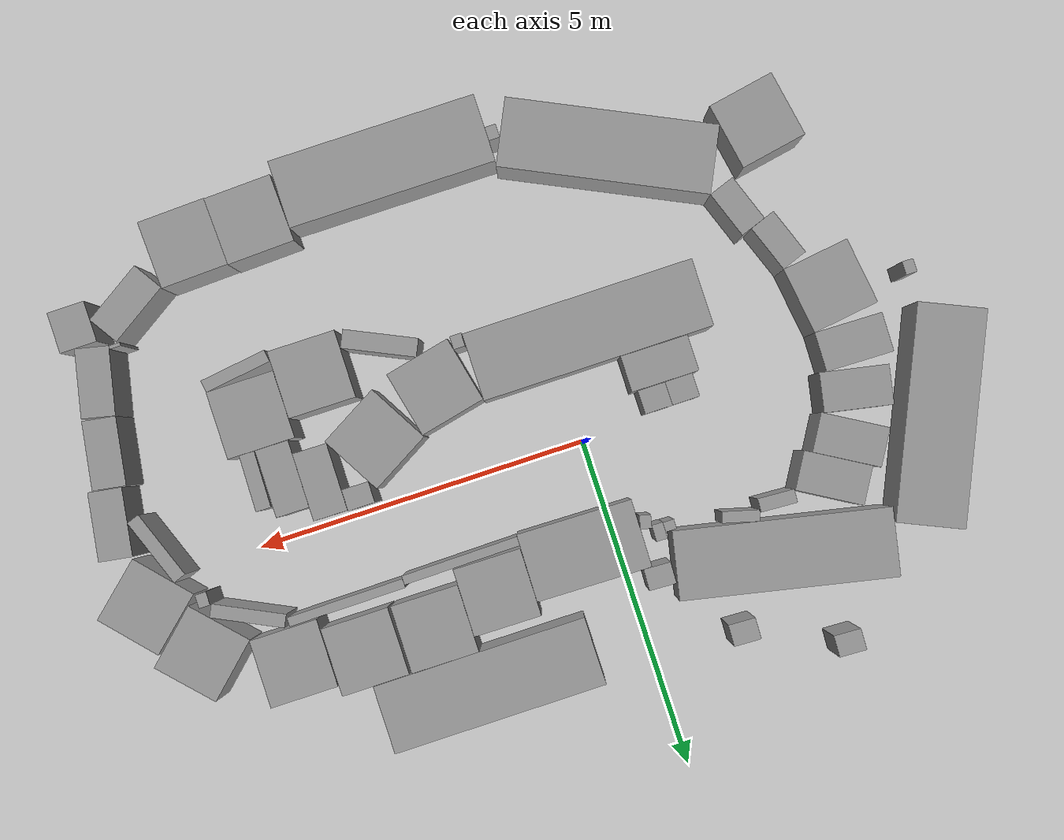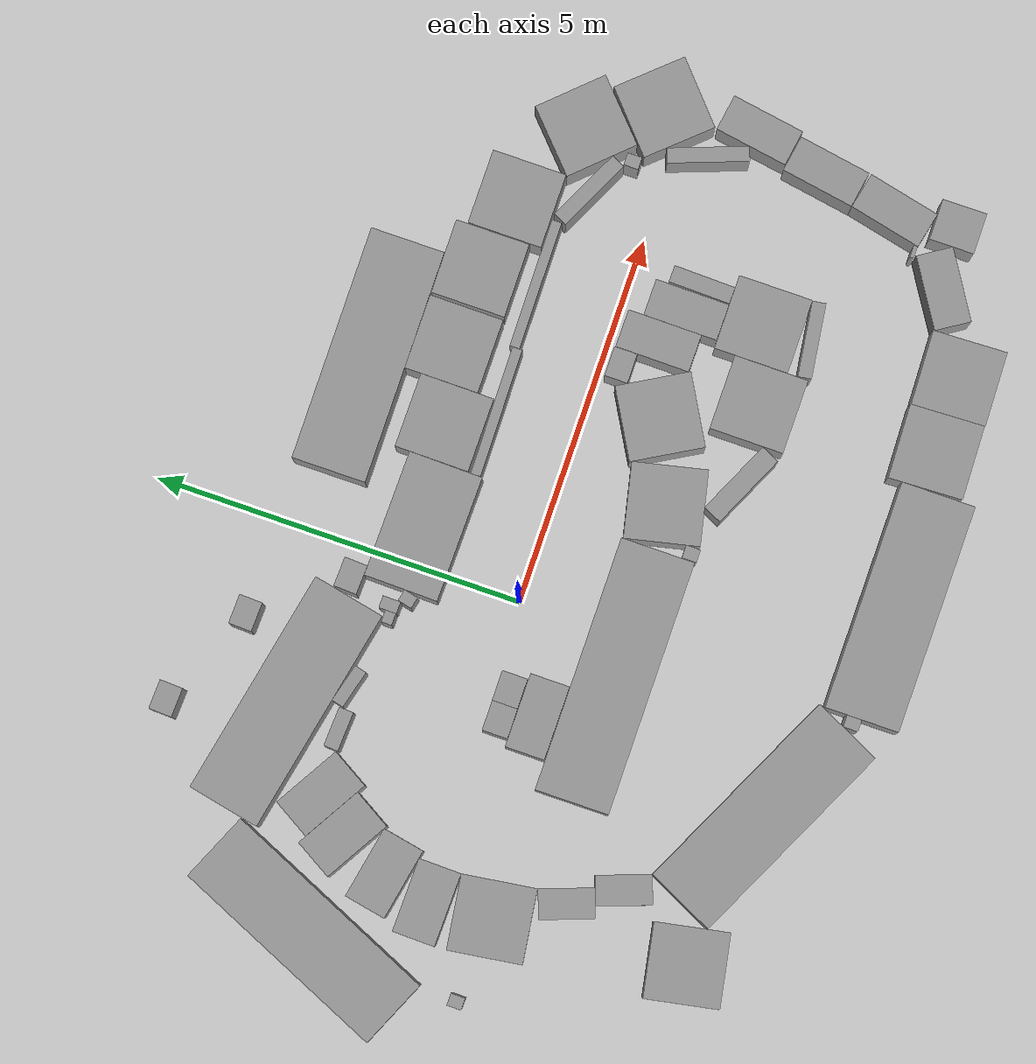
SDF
<sdf version="1.7">
 <world name="default">
  <light name="sun" type="directional">
   <pose>0 0 10 0 -0 0</pose>
   <diffuse>0.8 0.8 0.8 1</diffuse>
   <specular>0.2 0.2 0.2 1</specular>
   <attenuation>
    <range>1000</range>
    <constant>0.9</constant>
    <linear>0.01</linear>
    <quadratic>0.001</quadratic>
   </attenuation>
   <direction>-0.5 0.1 -0.9</direction>
   <spot><inner_angle>0</inner_angle><outer_angle>0</outer_angle><falloff>0</falloff></spot>
  </light>
  <model name="ground_plane">
   <static>1</static>
   <link name="link">
    <collision name="collision">
     <geometry><plane><normal>0 0 1</normal><size>100 100</size></plane></geometry>
     <surface><friction><ode><mu>100</mu><mu2>50</mu2></ode></friction></surface>
    </collision>
    <visual name="visual">
     <cast_shadows>0</cast_shadows>
     <geometry><plane><normal>0 0 1</normal><size>100 100</size></plane></geometry>
     <material>
      <script><uri>file://media/materials/scripts/gazebo.material</uri><name>Gazebo/Grey</name></script>
     </material>
    </visual>
   </link>
  </model>
  <gravity>0 0 -9.8</gravity>
  <magnetic_field>6e-06 2.3e-05 -4.2e-05</magnetic_field>
  <atmosphere type="adiabatic"/>
  <physics type="ode">
   <max_step_size>0.001</max_step_size>
   <real_time_factor>1</real_time_factor>
   <real_time_update_rate>1000</real_time_update_rate>
  </physics>
  <scene><ambient>0.4 0.4 0.4 1</ambient><background>0.7 0.7 0.7 1</background><shadows>1</shadows></scene>
  <spherical_coordinates>
   <surface_model>EARTH_WGS84</surface_model>
   <latitude_deg>0</latitude_deg>
   <longitude_deg>0</longitude_deg>
   <elevation>0</elevation>
   <heading_deg>0</heading_deg>
  </spherical_coordinates>
  <model name="unit_box">
   <pose>0.47849 1.47717 0.5 0 0 -0.019249</pose>
   <link name="link">
    <inertial>
     <mass>1</mass>
     <inertia>
      <ixx>0.166667</ixx>
      <ixy>0</ixy>
      <ixz>0</ixz>
      <iyy>0.166667</iyy>
      <iyz>0</iyz>
      <izz>0.166667</izz>
     </inertia>
    </inertial>
    <collision name="collision"><geometry><box><size>1.70352 1 1</size></box></geometry></collision>
    <visual name="visual">
     <geometry><box><size>1.70352 1 1</size></box></geometry>
     <material>
      <script><name>Gazebo/Grey</name><uri>file://media/materials/scripts/gazebo.material</uri></script>
     </material>
    </visual>
   </link>
  </model>
  <model name="unit_box_0">
   <pose>-0.550515 -1.4883 0.5 -1e-06 -0 0.000456</pose>
   <link name="link">
    <inertial>
     <mass>1</mass>
     <inertia>
      <ixx>0.166667</ixx>
      <ixy>0</ixy>
      <ixz>0</ixz>
      <iyy>0.166667</iyy>
      <iyz>0</iyz>
      <izz>0.166667</izz>
     </inertia>
    </inertial>
    <collision name="collision"><geometry><box><size>3.43585 1 1</size></box></geometry></collision>
    <visual name="visual">
     <geometry><box><size>3.43585 1 1</size></box></geometry>
     <material>
      <script><name>Gazebo/Grey</name><uri>file://media/materials/scripts/gazebo.material</uri></script>
     </material>
    </visual>
   </link>
  </model>
  <model name="unit_box_1">
   <pose>1.76719 -1.39227 0.5 0 -0 0.220031</pose>
   <link name="link">
    <inertial>
     <mass>1</mass>
     <inertia>
      <ixx>0.166667</ixx>
      <ixy>0</ixy>
      <ixz>0</ixz>
      <iyy>0.166667</iyy>
      <iyz>0</iyz>
      <izz>0.166667</izz>
     </inertia>
    </inertial>
    <collision name="collision"><geometry><box><size>1 1 1</size></box></geometry></collision>
    <visual name="visual">
     <geometry><box><size>1 1 1</size></box></geometry>
     <material>
      <script><name>Gazebo/Grey</name><uri>file://media/materials/scripts/gazebo.material</uri></script>
     </material>
    </visual>
   </link>
  </model>
  <model name="unit_box_2">
   <pose>2.81266 -0.954832 0.5 0 -0 0.518129</pose>
   <link name="link">
    <inertial>
     <mass>1</mass>
     <inertia>
      <ixx>0.166667</ixx>
      <ixy>0</ixy>
      <ixz>0</ixz>
      <iyy>0.166667</iyy>
      <iyz>0</iyz>
      <izz>0.166667</izz>
     </inertia>
    </inertial>
    <collision name="collision"><geometry><box><size>1 1 1</size></box></geometry></collision>
    <visual name="visual">
     <geometry><box><size>1 1 1</size></box></geometry>
     <material>
      <script><name>Gazebo/Grey</name><uri>file://media/materials/scripts/gazebo.material</uri></script>
     </material>
    </visual>
   </link>
  </model>
  <model name="unit_box_3">
   <pose>3.73767 -0.617789 0.5 0 0 -0.007857</pose>
   <link name="link">
    <inertial>
     <mass>1</mass>
     <inertia>
      <ixx>0.166667</ixx>
      <ixy>0</ixy>
      <ixz>0</ixz>
      <iyy>0.166667</iyy>
      <iyz>0</iyz>
      <izz>0.166667</izz>
     </inertia>
    </inertial>
    <collision name="collision"><geometry><box><size>0.506643 1 1</size></box></geometry></collision>
    <visual name="visual">
     <geometry><box><size>0.506643 1 1</size></box></geometry>
     <material>
      <script><name>Gazebo/Grey</name><uri>file://media/materials/scripts/gazebo.material</uri></script>
     </material>
    </visual>
   </link>
  </model>
  <model name="unit_box_4">
   <pose>1.83672 1.65716 0.499995 0 -1e-05 -0.009959</pose>
   <link name="link">
    <inertial>
     <mass>1</mass>
     <inertia>
      <ixx>0.166667</ixx>
      <ixy>0</ixy>
      <ixz>0</ixz>
      <iyy>0.166667</iyy>
      <iyz>0</iyz>
      <izz>0.166667</izz>
     </inertia>
    </inertial>
    <collision name="collision"><geometry><box><size>1 1 1</size></box></geometry></collision>
    <visual name="visual">
     <geometry><box><size>1 1 1</size></box></geometry>
     <material>
      <script><name>Gazebo/Grey</name><uri>file://media/materials/scripts/gazebo.material</uri></script>
     </material>
    </visual>
   </link>
  </model>
  <model name="unit_box_5">
   <pose>2.84045 1.87251 0.499995 -1e-05 -0 -0.004925</pose>
   <link name="link">
    <inertial>
     <mass>1</mass>
     <inertia>
      <ixx>0.166667</ixx>
      <ixy>0</ixy>
      <ixz>0</ixz>
      <iyy>0.166667</iyy>
      <iyz>0</iyz>
      <izz>0.166667</izz>
     </inertia>
    </inertial>
    <collision name="collision"><geometry><box><size>1 1 1</size></box></geometry></collision>
    <visual name="visual">
     <geometry><box><size>1 1 1</size></box></geometry>
     <material>
      <script><name>Gazebo/Grey</name><uri>file://media/materials/scripts/gazebo.material</uri></script>
     </material>
    </visual>
   </link>
  </model>
  <model name="unit_box_6">
   <pose>3.28388 -0.257957 0.499999 -3e-06 2e-06 -0.000395</pose>
   <link name="link">
    <inertial>
     <mass>1</mass>
     <inertia>
      <ixx>0.166667</ixx>
      <ixy>0</ixy>
      <ixz>0</ixz>
      <iyy>0.166667</iyy>
      <iyz>0</iyz>
      <izz>0.166667</izz>
     </inertia>
    </inertial>
    <collision name="collision"><geometry><box><size>0.398821 0.313924 1</size></box></geometry></collision>
    <visual name="visual">
     <geometry><box><size>0.398821 0.313924 1</size></box></geometry>
     <material>
      <script><name>Gazebo/Grey</name><uri>file://media/materials/scripts/gazebo.material</uri></script>
     </material>
    </visual>
   </link>
  </model>
  <model name="unit_box_5_clone">
   <pose>3.87915 1.86884 0.499995 0 -1e-05 0</pose>
   <link name="link">
    <inertial>
     <mass>1</mass>
     <inertia>
      <ixx>0.166667</ixx>
      <ixy>0</ixy>
      <ixz>0</ixz>
      <iyy>0.166667</iyy>
      <iyz>0</iyz>
      <izz>0.166667</izz>
     </inertia>
    </inertial>
    <collision name="collision"><geometry><box><size>1 1 1</size></box></geometry></collision>
    <visual name="visual">
     <geometry><box><size>1 1 1</size></box></geometry>
     <material>
      <script><name>Gazebo/Grey</name><uri>file://media/materials/scripts/gazebo.material</uri></script>
     </material>
    </visual>
   </link>
  </model>
  <model name="unit_box_5_clone_0">
   <pose>4.89076 1.71298 0.499995 0 -1e-05 -0.003196</pose>
   <link name="link">
    <inertial>
     <mass>1</mass>
     <inertia>
      <ixx>0.166667</ixx>
      <ixy>0</ixy>
      <ixz>0</ixz>
      <iyy>0.166667</iyy>
      <iyz>0</iyz>
      <izz>0.166667</izz>
     </inertia>
    </inertial>
    <collision name="collision"><geometry><box><size>1 1 1</size></box></geometry></collision>
    <visual name="visual">
     <geometry><box><size>1 1 1</size></box></geometry>
     <material>
      <script><name>Gazebo/Grey</name><uri>file://media/materials/scripts/gazebo.material</uri></script>
     </material>
    </visual>
   </link>
  </model>
  <model name="unit_box_5_clone_1">
   <pose>6.08085 1.17464 0.5 0 0 -0.817352</pose>
   <link name="link">
    <inertial>
     <mass>1</mass>
     <inertia>
      <ixx>0.166667</ixx>
      <ixy>0</ixy>
      <ixz>0</ixz>
      <iyy>0.166667</iyy>
      <iyz>0</iyz>
      <izz>0.166667</izz>
     </inertia>
    </inertial>
    <collision name="collision"><geometry><box><size>1 1 1</size></box></geometry></collision>
    <visual name="visual">
     <geometry><box><size>1 1 1</size></box></geometry>
     <material>
      <script><name>Gazebo/Grey</name><uri>file://media/materials/scripts/gazebo.material</uri></script>
     </material>
    </visual>
   </link>
  </model>
  <model name="unit_box_5_clone_1_clone">
   <pose>6.63784 0.294101 0.5 0 0 -0.83831</pose>
   <link name="link">
    <inertial>
     <mass>1</mass>
     <inertia>
      <ixx>0.166667</ixx>
      <ixy>0</ixy>
      <ixz>0</ixz>
      <iyy>0.166667</iyy>
      <iyz>0</iyz>
      <izz>0.166667</izz>
     </inertia>
    </inertial>
    <collision name="collision"><geometry><box><size>1 1 1</size></box></geometry></collision>
    <visual name="visual">
     <geometry><box><size>1 1 1</size></box></geometry>
     <material>
      <script><name>Gazebo/Grey</name><uri>file://media/materials/scripts/gazebo.material</uri></script>
     </material>
    </visual>
   </link>
  </model>
  <model name="unit_box_5_clone_1_clone_0">
   <pose>6.75293 -0.972689 0.5 -2e-06 -1e-06 -1.72807</pose>
   <link name="link">
    <inertial>
     <mass>1</mass>
     <inertia>
      <ixx>0.166667</ixx>
      <ixy>0</ixy>
      <ixz>0</ixz>
      <iyy>0.166667</iyy>
      <iyz>0</iyz>
      <izz>0.166667</izz>
     </inertia>
    </inertial>
    <collision name="collision"><geometry><box><size>1 0.490145 1</size></box></geometry></collision>
    <visual name="visual">
     <geometry><box><size>1 0.490145 1</size></box></geometry>
     <material>
      <script><name>Gazebo/Grey</name><uri>file://media/materials/scripts/gazebo.material</uri></script>
     </material>
    </visual>
   </link>
  </model>
  <model name="unit_box_5_clone_1_clone_0_clone">
   <pose>6.52358 -1.96145 0.499997 0 7e-06 -1.73409</pose>
   <link name="link">
    <inertial>
     <mass>1</mass>
     <inertia>
      <ixx>0.166667</ixx>
      <ixy>0</ixy>
      <ixz>0</ixz>
      <iyy>0.166667</iyy>
      <iyz>0</iyz>
      <izz>0.166667</izz>
     </inertia>
    </inertial>
    <collision name="collision"><geometry><box><size>1 0.490145 1</size></box></geometry></collision>
    <visual name="visual">
     <geometry><box><size>1 0.490145 1</size></box></geometry>
     <material>
      <script><name>Gazebo/Grey</name><uri>file://media/materials/scripts/gazebo.material</uri></script>
     </material>
    </visual>
   </link>
  </model>
  <model name="unit_box_5_clone_1_clone_0_clone_0">
   <pose>4.60992 -0.913401 0.5 0 -0 -1.59331</pose>
   <link name="link">
    <inertial>
     <mass>1</mass>
     <inertia>
      <ixx>0.166667</ixx>
      <ixy>0</ixy>
      <ixz>0</ixz>
      <iyy>0.166667</iyy>
      <iyz>0</iyz>
      <izz>0.166667</izz>
     </inertia>
    </inertial>
    <collision name="collision"><geometry><box><size>0.832491 0.223815 1</size></box></geometry></collision>
    <visual name="visual">
     <geometry><box><size>0.832491 0.223815 1</size></box></geometry>
     <material>
      <script><name>Gazebo/Grey</name><uri>file://media/materials/scripts/gazebo.material</uri></script>
     </material>
    </visual>
   </link>
  </model>
  <model name="unit_box_5_clone_1_clone_0_clone_clone">
   <pose>6.33102 -2.96166 0.499997 -0 -7e-06 -1.78915</pose>
   <link name="link">
    <inertial>
     <mass>1</mass>
     <inertia>
      <ixx>0.166667</ixx>
      <ixy>0</ixy>
      <ixz>0</ixz>
      <iyy>0.166667</iyy>
      <iyz>0</iyz>
      <izz>0.166667</izz>
     </inertia>
    </inertial>
    <collision name="collision"><geometry><box><size>1 0.490145 1</size></box></geometry></collision>
    <visual name="visual">
     <geometry><box><size>1 0.490145 1</size></box></geometry>
     <material>
      <script><name>Gazebo/Grey</name><uri>file://media/materials/scripts/gazebo.material</uri></script>
     </material>
    </visual>
   </link>
  </model>
  <model name="unit_box_5_clone_1_clone_0_clone_clone_0">
   <pose>5.57309 -3.88825 0.5 0 -0 -2.57387</pose>
   <link name="link">
    <inertial>
     <mass>1</mass>
     <inertia>
      <ixx>0.166667</ixx>
      <ixy>0</ixy>
      <ixz>0</ixz>
      <iyy>0.166667</iyy>
      <iyz>0</iyz>
      <izz>0.166667</izz>
     </inertia>
    </inertial>
    <collision name="collision"><geometry><box><size>1 0.490145 1</size></box></geometry></collision>
    <visual name="visual">
     <geometry><box><size>1 0.490145 1</size></box></geometry>
     <material>
      <script><name>Gazebo/Grey</name><uri>file://media/materials/scripts/gazebo.material</uri></script>
     </material>
    </visual>
   </link>
  </model>
  <model name="unit_box_3_clone">
   <pose>4.38029 -1.83187 0.499987 -1e-06 -7e-06 -0.000962</pose>
   <link name="link">
    <inertial>
     <mass>1</mass>
     <inertia>
      <ixx>0.166667</ixx>
      <ixy>0</ixy>
      <ixz>0</ixz>
      <iyy>0.166667</iyy>
      <iyz>0</iyz>
      <izz>0.166667</izz>
     </inertia>
    </inertial>
    <collision name="collision"><geometry><box><size>1 1 1</size></box></geometry></collision>
    <visual name="visual">
     <geometry><box><size>1 1 1</size></box></geometry>
     <material>
      <script><name>Gazebo/Grey</name><uri>file://media/materials/scripts/gazebo.material</uri></script>
     </material>
    </visual>
   </link>
  </model>
  <model name="unit_box_3_clone_0">
   <pose>3.37667 -2.11029 0.499995 0 -1e-05 -0.004104</pose>
   <link name="link">
    <inertial>
     <mass>1</mass>
     <inertia>
      <ixx>0.166667</ixx>
      <ixy>0</ixy>
      <ixz>0</ixz>
      <iyy>0.166667</iyy>
      <iyz>0</iyz>
      <izz>0.166667</izz>
     </inertia>
    </inertial>
    <collision name="collision"><geometry><box><size>1 1 1</size></box></geometry></collision>
    <visual name="visual">
     <geometry><box><size>1 1 1</size></box></geometry>
     <material>
      <script><name>Gazebo/Grey</name><uri>file://media/materials/scripts/gazebo.material</uri></script>
     </material>
    </visual>
   </link>
  </model>
  <model name="unit_box_5_clone_clone">
   <pose>4.53754 -4.45139 0.499996 0 9e-06 0.036161</pose>
   <link name="link">
    <inertial>
     <mass>1</mass>
     <inertia>
      <ixx>0.166667</ixx>
      <ixy>0</ixy>
      <ixz>0</ixz>
      <iyy>0.166667</iyy>
      <iyz>0</iyz>
      <izz>0.166667</izz>
     </inertia>
    </inertial>
    <collision name="collision"><geometry><box><size>1 1 1</size></box></geometry></collision>
    <visual name="visual">
     <geometry><box><size>1 1 1</size></box></geometry>
     <material>
      <script><name>Gazebo/Grey</name><uri>file://media/materials/scripts/gazebo.material</uri></script>
     </material>
    </visual>
   </link>
  </model>
  <model name="unit_box_5_clone_clone_0">
   <pose>3.53787 -4.47883 0.499987 0 -7e-06 0.036161</pose>
   <link name="link">
    <inertial>
     <mass>1</mass>
     <inertia>
      <ixx>0.166667</ixx>
      <ixy>0</ixy>
      <ixz>0</ixz>
      <iyy>0.166667</iyy>
      <iyz>0</iyz>
      <izz>0.166667</izz>
     </inertia>
    </inertial>
    <collision name="collision"><geometry><box><size>1 1 1</size></box></geometry></collision>
    <visual name="visual">
     <geometry><box><size>1 1 1</size></box></geometry>
     <material>
      <script><name>Gazebo/Grey</name><uri>file://media/materials/scripts/gazebo.material</uri></script>
     </material>
    </visual>
   </link>
  </model>
  <model name="unit_box_5_clone_clone_1">
   <pose>2.32078 -2.22984 0.5 0 -0 -0.436343</pose>
   <link name="link">
    <inertial>
     <mass>1</mass>
     <inertia>
      <ixx>0.166667</ixx>
      <ixy>0</ixy>
      <ixz>0</ixz>
      <iyy>0.166667</iyy>
      <iyz>0</iyz>
      <izz>0.166667</izz>
     </inertia>
    </inertial>
    <collision name="collision"><geometry><box><size>1.08536 0.270191 1</size></box></geometry></collision>
    <visual name="visual">
     <geometry><box><size>1.08536 0.270191 1</size></box></geometry>
     <material>
      <script><name>Gazebo/Grey</name><uri>file://media/materials/scripts/gazebo.material</uri></script>
     </material>
    </visual>
   </link>
  </model>
  <model name="unit_box_0_clone">
   <pose>1.48705 -4.68122 0.499972 -1e-06 1e-06 -0.0005</pose>
   <link name="link">
    <inertial>
     <mass>1</mass>
     <inertia>
      <ixx>0.166667</ixx>
      <ixy>0</ixy>
      <ixz>0</ixz>
      <iyy>0.166667</iyy>
      <iyz>0</iyz>
      <izz>0.166667</izz>
     </inertia>
    </inertial>
    <collision name="collision"><geometry><box><size>3.07892 1 1</size></box></geometry></collision>
    <visual name="visual">
     <geometry><box><size>3.07892 1 1</size></box></geometry>
     <material>
      <script><name>Gazebo/Grey</name><uri>file://media/materials/scripts/gazebo.material</uri></script>
     </material>
    </visual>
   </link>
  </model>
  <model name="unit_box_0_clone_0">
   <pose>-1.63848 -3.8893 0.499997 6e-06 -0 -0.446663</pose>
   <link name="link">
    <inertial>
     <mass>1</mass>
     <inertia>
      <ixx>0.166667</ixx>
      <ixy>0</ixy>
      <ixz>0</ixz>
      <iyy>0.166667</iyy>
      <iyz>0</iyz>
      <izz>0.166667</izz>
     </inertia>
    </inertial>
    <collision name="collision"><geometry><box><size>3.07892 1 1</size></box></geometry></collision>
    <visual name="visual">
     <geometry><box><size>3.07892 1 1</size></box></geometry>
     <material>
      <script><name>Gazebo/Grey</name><uri>file://media/materials/scripts/gazebo.material</uri></script>
     </material>
    </visual>
   </link>
  </model>
  <model name="unit_box_0_clone_1">
   <pose>1.26231 -1.90938 0.5 3e-06 2e-06 0.003042</pose>
   <link name="link">
    <inertial>
     <mass>1</mass>
     <inertia>
      <ixx>0.166667</ixx>
      <ixy>0</ixy>
      <ixz>0</ixz>
      <iyy>0.166667</iyy>
      <iyz>0</iyz>
      <izz>0.166667</izz>
     </inertia>
    </inertial>
    <collision name="collision"><geometry><box><size>0.172646 0.197047 1</size></box></geometry></collision>
    <visual name="visual">
     <geometry><box><size>0.172646 0.197047 1</size></box></geometry>
     <material>
      <script><name>Gazebo/Grey</name><uri>file://media/materials/scripts/gazebo.material</uri></script>
     </material>
    </visual>
   </link>
  </model>
  <model name="unit_box_0_clone_1_clone">
   <pose>-0.133878 -4.58042 0.5 -0 -0 -0.000478</pose>
   <link name="link">
    <inertial>
     <mass>1</mass>
     <inertia>
      <ixx>0.166667</ixx>
      <ixy>0</ixy>
      <ixz>0</ixz>
      <iyy>0.166667</iyy>
      <iyz>0</iyz>
      <izz>0.166667</izz>
     </inertia>
    </inertial>
    <collision name="collision"><geometry><box><size>0.163027 0.197047 1</size></box></geometry></collision>
    <visual name="visual">
     <geometry><box><size>0.163027 0.197047 1</size></box></geometry>
     <material>
      <script><name>Gazebo/Grey</name><uri>file://media/materials/scripts/gazebo.material</uri></script>
     </material>
    </visual>
   </link>
  </model>
  <model name="unit_box_7">
   <pose>-4.02342 -1.00509 0.499996 0 9e-06 0.136874</pose>
   <link name="link">
    <inertial>
     <mass>1</mass>
     <inertia>
      <ixx>0.166667</ixx>
      <ixy>0</ixy>
      <ixz>0</ixz>
      <iyy>0.166667</iyy>
      <iyz>0</iyz>
      <izz>0.166667</izz>
     </inertia>
    </inertial>
    <collision name="collision"><geometry><box><size>1 1 1</size></box></geometry></collision>
    <visual name="visual">
     <geometry><box><size>1 1 1</size></box></geometry>
     <material>
      <script><name>Gazebo/Grey</name><uri>file://media/materials/scripts/gazebo.material</uri></script>
     </material>
    </visual>
   </link>
  </model>
  <model name="unit_box_7_clone">
   <pose>-3.77139 -3.5685 0.5 0 -0 0.184265</pose>
   <link name="link">
    <inertial>
     <mass>1</mass>
     <inertia>
      <ixx>0.166667</ixx>
      <ixy>0</ixy>
      <ixz>0</ixz>
      <iyy>0.166667</iyy>
      <iyz>0</iyz>
      <izz>0.166667</izz>
     </inertia>
    </inertial>
    <collision name="collision"><geometry><box><size>1 1 1</size></box></geometry></collision>
    <visual name="visual">
     <geometry><box><size>1 1 1</size></box></geometry>
     <material>
      <script><name>Gazebo/Grey</name><uri>file://media/materials/scripts/gazebo.material</uri></script>
     </material>
    </visual>
   </link>
  </model>
  <model name="unit_box_clone">
   <pose>2.34669 2.87504 0.499772 -0 0.000145 0.000458</pose>
   <link name="link">
    <inertial>
     <mass>1</mass>
     <inertia>
      <ixx>0.166667</ixx>
      <ixy>0</ixy>
      <ixz>0</ixz>
      <iyy>0.166667</iyy>
      <iyz>0</iyz>
      <izz>0.166667</izz>
     </inertia>
    </inertial>
    <collision name="collision"><geometry><box><size>3.15373 1 1</size></box></geometry></collision>
    <visual name="visual">
     <geometry><box><size>3.15373 1 1</size></box></geometry>
     <material>
      <script><name>Gazebo/Grey</name><uri>file://media/materials/scripts/gazebo.material</uri></script>
     </material>
    </visual>
   </link>
  </model>
  <model name="unit_box_clone_0">
   <pose>-2.23285 2.41356 0.5 -1e-06 0 -0.206637</pose>
   <link name="link">
    <inertial>
     <mass>1</mass>
     <inertia>
      <ixx>0.166667</ixx>
      <ixy>0</ixy>
      <ixz>0</ixz>
      <iyy>0.166667</iyy>
      <iyz>0</iyz>
      <izz>0.166667</izz>
     </inertia>
    </inertial>
    <collision name="collision"><geometry><box><size>3.15373 1 1</size></box></geometry></collision>
    <visual name="visual">
     <geometry><box><size>3.15373 1 1</size></box></geometry>
     <material>
      <script><name>Gazebo/Grey</name><uri>file://media/materials/scripts/gazebo.material</uri></script>
     </material>
    </visual>
   </link>
  </model>
  <model name="unit_box_clone_1">
   <pose>-4.94529 1.23573 0.499995 0 -3e-06 1.15265</pose>
   <link name="link">
    <inertial>
     <mass>1</mass>
     <inertia>
      <ixx>0.166667</ixx>
      <ixy>0</ixy>
      <ixz>0</ixz>
      <iyy>0.166667</iyy>
      <iyz>0</iyz>
      <izz>0.166667</izz>
     </inertia>
    </inertial>
    <collision name="collision"><geometry><box><size>3.15373 1 1</size></box></geometry></collision>
    <visual name="visual">
     <geometry><box><size>3.15373 1 1</size></box></geometry>
     <material>
      <script><name>Gazebo/Grey</name><uri>file://media/materials/scripts/gazebo.material</uri></script>
     </material>
    </visual>
   </link>
  </model>
  <model name="unit_box_6_clone">
   <pose>-2.69908 3.89411 0.500001 2e-06 1e-06 -0.042045</pose>
   <link name="link">
    <inertial>
     <mass>1</mass>
     <inertia>
      <ixx>0.166667</ixx>
      <ixy>0</ixy>
      <ixz>0</ixz>
      <iyy>0.166667</iyy>
      <iyz>0</iyz>
      <izz>0.166667</izz>
     </inertia>
    </inertial>
    <collision name="collision"><geometry><box><size>0.398821 0.313924 1</size></box></geometry></collision>
    <visual name="visual">
     <geometry><box><size>0.398821 0.313924 1</size></box></geometry>
     <material>
      <script><name>Gazebo/Grey</name><uri>file://media/materials/scripts/gazebo.material</uri></script>
     </material>
    </visual>
   </link>
  </model>
  <model name="unit_box_6_clone_0">
   <pose>-3.11925 -2.48969 0.5 0 -0 0.346997</pose>
   <link name="link">
    <inertial>
     <mass>1</mass>
     <inertia>
      <ixx>0.166667</ixx>
      <ixy>0</ixy>
      <ixz>0</ixz>
      <iyy>0.166667</iyy>
      <iyz>0</iyz>
      <izz>0.166667</izz>
     </inertia>
    </inertial>
    <collision name="collision"><geometry><box><size>0.398821 0.736748 1</size></box></geometry></collision>
    <visual name="visual">
     <geometry><box><size>0.398821 0.736748 1</size></box></geometry>
     <material>
      <script><name>Gazebo/Grey</name><uri>file://media/materials/scripts/gazebo.material</uri></script>
     </material>
    </visual>
   </link>
  </model>
  <model name="unit_box_0_clone_1_clone_0">
   <pose>-0.621353 1.55648 0.5 0 -0 -0.02007</pose>
   <link name="link">
    <inertial>
     <mass>1</mass>
     <inertia>
      <ixx>0.166667</ixx>
      <ixy>0</ixy>
      <ixz>0</ixz>
      <iyy>0.166667</iyy>
      <iyz>0</iyz>
      <izz>0.166667</izz>
     </inertia>
    </inertial>
    <collision name="collision"><geometry><box><size>0.163027 0.241905 1</size></box></geometry></collision>
    <visual name="visual">
     <geometry><box><size>0.163027 0.241905 1</size></box></geometry>
     <material>
      <script><name>Gazebo/Grey</name><uri>file://media/materials/scripts/gazebo.material</uri></script>
     </material>
    </visual>
   </link>
  </model>
  <model name="unit_box_0_clone_1_clone_1">
   <pose>-2.35151 1.65793 0.499999 2e-06 -4e-06 -0.053323</pose>
   <link name="link">
    <inertial>
     <mass>1</mass>
     <inertia>
      <ixx>0.166667</ixx>
      <ixy>0</ixy>
      <ixz>0</ixz>
      <iyy>0.166667</iyy>
      <iyz>0</iyz>
      <izz>0.166667</izz>
     </inertia>
    </inertial>
    <collision name="collision"><geometry><box><size>0.535826 0.197047 1</size></box></geometry></collision>
    <visual name="visual">
     <geometry><box><size>0.535826 0.197047 1</size></box></geometry>
     <material>
      <script><name>Gazebo/Grey</name><uri>file://media/materials/scripts/gazebo.material</uri></script>
     </material>
    </visual>
   </link>
  </model>
  <model name="unit_box_0_clone_1_clone_2">
   <pose>-0.476322 1.35889 0.499971 4e-06 -0 -0.233278</pose>
   <link name="link">
    <inertial>
     <mass>1</mass>
     <inertia>
      <ixx>0.166667</ixx>
      <ixy>0</ixy>
      <ixz>0</ixz>
      <iyy>0.166667</iyy>
      <iyz>0</iyz>
      <izz>0.166667</izz>
     </inertia>
    </inertial>
    <collision name="collision"><geometry><box><size>0.163027 0.197047 1</size></box></geometry></collision>
    <visual name="visual">
     <geometry><box><size>0.163027 0.197047 1</size></box></geometry>
     <material>
      <script><name>Gazebo/Grey</name><uri>file://media/materials/scripts/gazebo.material</uri></script>
     </material>
    </visual>
   </link>
  </model>
  <model name="unit_box_5_clone_1_clone_0_clone_0_clone">
   <pose>4.23467 -0.827265 0.5 -0 -0 -1.57926</pose>
   <link name="link">
    <inertial>
     <mass>1</mass>
     <inertia>
      <ixx>0.166667</ixx>
      <ixy>0</ixy>
      <ixz>0</ixz>
      <iyy>0.166667</iyy>
      <iyz>0</iyz>
      <izz>0.166667</izz>
     </inertia>
    </inertial>
    <collision name="collision"><geometry><box><size>1 0.490145 1</size></box></geometry></collision>
    <visual name="visual">
     <geometry><box><size>1 0.490145 1</size></box></geometry>
     <material>
      <script><name>Gazebo/Grey</name><uri>file://media/materials/scripts/gazebo.material</uri></script>
     </material>
    </visual>
   </link>
  </model>
  <model name="unit_box_6_clone_1">
   <pose>2.18826 1.06594 0.499996 0 5e-06 0.01269</pose>
   <link name="link">
    <inertial>
     <mass>1</mass>
     <inertia>
      <ixx>0.166667</ixx>
      <ixy>0</ixy>
      <ixz>0</ixz>
      <iyy>0.166667</iyy>
      <iyz>0</iyz>
      <izz>0.166667</izz>
     </inertia>
    </inertial>
    <collision name="collision"><geometry><box><size>1.7277 0.133165 1</size></box></geometry></collision>
    <visual name="visual">
     <geometry><box><size>1.7277 0.133165 1</size></box></geometry>
     <material>
      <script><name>Gazebo/Grey</name><uri>file://media/materials/scripts/gazebo.material</uri></script>
     </material>
    </visual>
   </link>
  </model>
  <model name="unit_box_6_clone_1_clone">
   <pose>3.91596 1.12325 0.499995 0 6e-06 0.007957</pose>
   <link name="link">
    <inertial>
     <mass>1</mass>
     <inertia>
      <ixx>0.166667</ixx>
      <ixy>0</ixy>
      <ixz>0</ixz>
      <iyy>0.166667</iyy>
      <iyz>0</iyz>
      <izz>0.166667</izz>
     </inertia>
    </inertial>
    <collision name="collision"><geometry><box><size>1.7277 0.133165 1</size></box></geometry></collision>
    <visual name="visual">
     <geometry><box><size>1.7277 0.133165 1</size></box></geometry>
     <material>
      <script><name>Gazebo/Grey</name><uri>file://media/materials/scripts/gazebo.material</uri></script>
     </material>
    </visual>
   </link>
  </model>
  <model name="unit_box_0_clone_1_clone_3">
   <pose>5.29581 0.865487 0.499996 1e-06 -7e-06 -0.454482</pose>
   <link name="link">
    <inertial>
     <mass>1</mass>
     <inertia>
      <ixx>0.166667</ixx>
      <ixy>0</ixy>
      <ixz>0</ixz>
      <iyy>0.166667</iyy>
      <iyz>0</iyz>
      <izz>0.166667</izz>
     </inertia>
    </inertial>
    <collision name="collision"><geometry><box><size>1.0726 0.197047 1</size></box></geometry></collision>
    <visual name="visual">
     <geometry><box><size>1.0726 0.197047 1</size></box></geometry>
     <material>
      <script><name>Gazebo/Grey</name><uri>file://media/materials/scripts/gazebo.material</uri></script>
     </material>
    </visual>
   </link>
  </model>
  <model name="unit_box_0_clone_1_clone_4">
   <pose>5.839 0.452712 0.500001 -2e-06 1.5e-05 0.00088</pose>
   <link name="link">
    <inertial>
     <mass>1</mass>
     <inertia>
      <ixx>0.166667</ixx>
      <ixy>0</ixy>
      <ixz>0</ixz>
      <iyy>0.166667</iyy>
      <iyz>0</iyz>
      <izz>0.166667</izz>
     </inertia>
    </inertial>
    <collision name="collision"><geometry><box><size>0.163027 0.197047 1</size></box></geometry></collision>
    <visual name="visual">
     <geometry><box><size>0.163027 0.197047 1</size></box></geometry>
     <material>
      <script><name>Gazebo/Grey</name><uri>file://media/materials/scripts/gazebo.material</uri></script>
     </material>
    </visual>
   </link>
  </model>
  <model name="unit_box_0_clone_1_clone_3_clone">
   <pose>6.23685 -0.442683 0.5 0 0 -1.21859</pose>
   <link name="link">
    <inertial>
     <mass>1</mass>
     <inertia>
      <ixx>0.166667</ixx>
      <ixy>0</ixy>
      <ixz>0</ixz>
      <iyy>0.166667</iyy>
      <iyz>0</iyz>
      <izz>0.166667</izz>
     </inertia>
    </inertial>
    <collision name="collision"><geometry><box><size>1.0726 0.197047 1</size></box></geometry></collision>
    <visual name="visual">
     <geometry><box><size>1.0726 0.197047 1</size></box></geometry>
     <material>
      <script><name>Gazebo/Grey</name><uri>file://media/materials/scripts/gazebo.material</uri></script>
     </material>
    </visual>
   </link>
  </model>
  <model name="unit_box_8">
   <pose>4.38955 -2.49016 0.5 0 -0 0.137304</pose>
   <link name="link">
    <inertial>
     <mass>1</mass>
     <inertia>
      <ixx>0.166667</ixx>
      <ixy>0</ixy>
      <ixz>0</ixz>
      <iyy>0.166667</iyy>
      <iyz>0</iyz>
      <izz>0.166667</izz>
     </inertia>
    </inertial>
    <collision name="collision"><geometry><box><size>1 0.18046 1</size></box></geometry></collision>
    <visual name="visual">
     <geometry><box><size>1 0.18046 1</size></box></geometry>
     <material>
      <script><name>Gazebo/Grey</name><uri>file://media/materials/scripts/gazebo.material</uri></script>
     </material>
    </visual>
   </link>
  </model>
  <model name="unit_box_9">
   <pose>6.40077 -3.80778 0.5 0 -0 0.002249</pose>
   <link name="link">
    <inertial>
     <mass>1</mass>
     <inertia>
      <ixx>0.166667</ixx>
      <ixy>0</ixy>
      <ixz>0</ixz>
      <iyy>0.166667</iyy>
      <iyz>0</iyz>
      <izz>0.166667</izz>
     </inertia>
    </inertial>
    <collision name="collision"><geometry><box><size>0.548756 0.602522 1</size></box></geometry></collision>
    <visual name="visual">
     <geometry><box><size>0.548756 0.602522 1</size></box></geometry>
     <material>
      <script><name>Gazebo/Grey</name><uri>file://media/materials/scripts/gazebo.material</uri></script>
     </material>
    </visual>
   </link>
  </model>
  <model name="unit_box_0_clone_1_clone_5">
   <pose>5.90237 -3.36743 0.5 0 -1e-06 0.002824</pose>
   <link name="link">
    <inertial>
     <mass>1</mass>
     <inertia>
      <ixx>0.166667</ixx>
      <ixy>0</ixy>
      <ixz>0</ixz>
      <iyy>0.166667</iyy>
      <iyz>0</iyz>
      <izz>0.166667</izz>
     </inertia>
    </inertial>
    <collision name="collision"><geometry><box><size>0.163027 0.0494721 1</size></box></geometry></collision>
    <visual name="visual">
     <geometry><box><size>0.163027 0.0494721 1</size></box></geometry>
     <material>
      <script><name>Gazebo/Grey</name><uri>file://media/materials/scripts/gazebo.material</uri></script>
     </material>
    </visual>
   </link>
  </model>
  <model name="unit_box_6_clone_0_clone">
   <pose>-3.52207 -1.85012 0.5 0 -0 0.353662</pose>
   <link name="link">
    <inertial>
     <mass>1</mass>
     <inertia>
      <ixx>0.166667</ixx>
      <ixy>0</ixy>
      <ixz>0</ixz>
      <iyy>0.166667</iyy>
      <iyz>0</iyz>
      <izz>0.166667</izz>
     </inertia>
    </inertial>
    <collision name="collision"><geometry><box><size>0.398821 0.736748 1</size></box></geometry></collision>
    <visual name="visual">
     <geometry><box><size>0.398821 0.736748 1</size></box></geometry>
     <material>
      <script><name>Gazebo/Grey</name><uri>file://media/materials/scripts/gazebo.material</uri></script>
     </material>
    </visual>
   </link>
  </model>
  <model name="unit_box_10">
   <pose>-4.09086 -0.142147 0.5 0 0 -0.020748</pose>
   <link name="link">
    <inertial>
     <mass>1</mass>
     <inertia>
      <ixx>0.166667</ixx>
      <ixy>0</ixy>
      <ixz>0</ixz>
      <iyy>0.166667</iyy>
      <iyz>0</iyz>
      <izz>0.166667</izz>
     </inertia>
    </inertial>
    <collision name="collision"><geometry><box><size>1 0.578317 1</size></box></geometry></collision>
    <visual name="visual">
     <geometry><box><size>1 0.578317 1</size></box></geometry>
     <material>
      <script><name>Gazebo/Grey</name><uri>file://media/materials/scripts/gazebo.material</uri></script>
     </material>
    </visual>
   </link>
  </model>
  <model name="unit_box_10_clone">
   <pose>-3.91598 0.495983 0.5 -0 -0 -0.193207</pose>
   <link name="link">
    <inertial>
     <mass>1</mass>
     <inertia>
      <ixx>0.166667</ixx>
      <ixy>0</ixy>
      <ixz>0</ixz>
      <iyy>0.166667</iyy>
      <iyz>0</iyz>
      <izz>0.166667</izz>
     </inertia>
    </inertial>
    <collision name="collision"><geometry><box><size>1 0.578317 1</size></box></geometry></collision>
    <visual name="visual">
     <geometry><box><size>1 0.578317 1</size></box></geometry>
     <material>
      <script><name>Gazebo/Grey</name><uri>file://media/materials/scripts/gazebo.material</uri></script>
     </material>
    </visual>
   </link>
  </model>
  <model name="unit_box_10_clone_0">
   <pose>-3.61566 1.16503 0.5 -0 -0 -0.533872</pose>
   <link name="link">
    <inertial>
     <mass>1</mass>
     <inertia>
      <ixx>0.166667</ixx>
      <ixy>0</ixy>
      <ixz>0</ixz>
      <iyy>0.166667</iyy>
      <iyz>0</iyz>
      <izz>0.166667</izz>
     </inertia>
    </inertial>
    <collision name="collision"><geometry><box><size>1 0.578317 1</size></box></geometry></collision>
    <visual name="visual">
     <geometry><box><size>1 0.578317 1</size></box></geometry>
     <material>
      <script><name>Gazebo/Grey</name><uri>file://media/materials/scripts/gazebo.material</uri></script>
     </material>
    </visual>
   </link>
  </model>
  <model name="unit_box_10_clone_1">
   <pose>-3.21438 1.60221 0.5 0 0 -0.535488</pose>
   <link name="link">
    <inertial>
     <mass>1</mass>
     <inertia>
      <ixx>0.166667</ixx>
      <ixy>0</ixy>
      <ixz>0</ixz>
      <iyy>0.166667</iyy>
      <iyz>0</iyz>
      <izz>0.166667</izz>
     </inertia>
    </inertial>
    <collision name="collision"><geometry><box><size>1 0.578317 1</size></box></geometry></collision>
    <visual name="visual">
     <geometry><box><size>1 0.578317 1</size></box></geometry>
     <material>
      <script><name>Gazebo/Grey</name><uri>file://media/materials/scripts/gazebo.material</uri></script>
     </material>
    </visual>
   </link>
  </model>
  <model name="unit_box_0_clone_1_clone_1_clone">
   <pose>-5.17209 -0.912698 0.5 0 2e-06 -0.007954</pose>
   <link name="link">
    <inertial>
     <mass>1</mass>
     <inertia>
      <ixx>0.166667</ixx>
      <ixy>0</ixy>
      <ixz>0</ixz>
      <iyy>0.166667</iyy>
      <iyz>0</iyz>
      <izz>0.166667</izz>
     </inertia>
    </inertial>
    <collision name="collision"><geometry><box><size>0.163027 0.197047 1</size></box></geometry></collision>
    <visual name="visual">
     <geometry><box><size>0.163027 0.197047 1</size></box></geometry>
     <material>
      <script><name>Gazebo/Grey</name><uri>file://media/materials/scripts/gazebo.material</uri></script>
     </material>
    </visual>
   </link>
  </model>
  <model name="unit_box_11">
   <pose>-1.3702 -0.713785 0.500001 -6e-06 -0 -0.003837</pose>
   <link name="link">
    <inertial>
     <mass>1</mass>
     <inertia>
      <ixx>0.166667</ixx>
      <ixy>0</ixy>
      <ixz>0</ixz>
      <iyy>0.166667</iyy>
      <iyz>0</iyz>
      <izz>0.166667</izz>
     </inertia>
    </inertial>
    <collision name="collision"><geometry><box><size>1 0.533952 1</size></box></geometry></collision>
    <visual name="visual">
     <geometry><box><size>1 0.533952 1</size></box></geometry>
     <material>
      <script><name>Gazebo/Grey</name><uri>file://media/materials/scripts/gazebo.material</uri></script>
     </material>
    </visual>
   </link>
  </model>
  <model name="unit_box_11_clone">
   <pose>-1.56126 -0.26763 0.499999 2e-06 4e-06 -0.000803</pose>
   <link name="link">
    <inertial>
     <mass>1</mass>
     <inertia>
      <ixx>0.166667</ixx>
      <ixy>0</ixy>
      <ixz>0</ixz>
      <iyy>0.166667</iyy>
      <iyz>0</iyz>
      <izz>0.166667</izz>
     </inertia>
    </inertial>
    <collision name="collision"><geometry><box><size>0.406787 0.34674 1</size></box></geometry></collision>
    <visual name="visual">
     <geometry><box><size>0.406787 0.34674 1</size></box></geometry>
     <material>
      <script><name>Gazebo/Grey</name><uri>file://media/materials/scripts/gazebo.material</uri></script>
     </material>
    </visual>
   </link>
  </model>
  <model name="unit_box_11_clone_clone">
   <pose>-1.15447 -0.265054 0.500001 2e-06 -1e-06 -0.000849</pose>
   <link name="link">
    <inertial>
     <mass>1</mass>
     <inertia>
      <ixx>0.166667</ixx>
      <ixy>0</ixy>
      <ixz>0</ixz>
      <iyy>0.166667</iyy>
      <iyz>0</iyz>
      <izz>0.166667</izz>
     </inertia>
    </inertial>
    <collision name="collision"><geometry><box><size>0.406787 0.34674 1</size></box></geometry></collision>
    <visual name="visual">
     <geometry><box><size>0.406787 0.34674 1</size></box></geometry>
     <material>
      <script><name>Gazebo/Grey</name><uri>file://media/materials/scripts/gazebo.material</uri></script>
     </material>
    </visual>
   </link>
  </model>
  <model name="unit_box_6_clone_clone_0_clone">
   <pose>-0.430785 2.1573 0.500001 1e-06 -2e-06 -0.044568</pose>
   <link name="link">
    <inertial>
     <mass>1</mass>
     <inertia>
      <ixx>0.166667</ixx>
      <ixy>0</ixy>
      <ixz>0</ixz>
      <iyy>0.166667</iyy>
      <iyz>0</iyz>
      <izz>0.166667</izz>
     </inertia>
    </inertial>
    <collision name="collision"><geometry><box><size>0.398821 0.313924 1</size></box></geometry></collision>
    <visual name="visual">
     <geometry><box><size>0.398821 0.313924 1</size></box></geometry>
     <material>
      <script><name>Gazebo/Grey</name><uri>file://media/materials/scripts/gazebo.material</uri></script>
     </material>
    </visual>
   </link>
  </model>
  <model name="unit_box_0_clone_1_clone_1_clone_0">
   <pose>-1.78693 1.70891 0.499998 -0 2e-06 -0.263528</pose>
   <link name="link">
    <inertial>
     <mass>1</mass>
     <inertia>
      <ixx>0.166667</ixx>
      <ixy>0</ixy>
      <ixz>0</ixz>
      <iyy>0.166667</iyy>
      <iyz>0</iyz>
      <izz>0.166667</izz>
     </inertia>
    </inertial>
    <collision name="collision"><geometry><box><size>0.535826 0.165538 1</size></box></geometry></collision>
    <visual name="visual">
     <geometry><box><size>0.535826 0.165538 1</size></box></geometry>
     <material>
      <script><name>Gazebo/Grey</name><uri>file://media/materials/scripts/gazebo.material</uri></script>
     </material>
    </visual>
   </link>
  </model>
  <model name="unit_box_6_clone_clone_clone">
   <pose>-1.32532 3.28253 0.500001 2e-06 -1e-06 -0.036792</pose>
   <link name="link">
    <inertial>
     <mass>1</mass>
     <inertia>
      <ixx>0.166667</ixx>
      <ixy>0</ixy>
      <ixz>0</ixz>
      <iyy>0.166667</iyy>
      <iyz>0</iyz>
      <izz>0.166667</izz>
     </inertia>
    </inertial>
    <collision name="collision"><geometry><box><size>0.398821 0.313924 1</size></box></geometry></collision>
    <visual name="visual">
     <geometry><box><size>0.398821 0.313924 1</size></box></geometry>
     <material>
      <script><name>Gazebo/Grey</name><uri>file://media/materials/scripts/gazebo.material</uri></script>
     </material>
    </visual>
   </link>
  </model>
  <model name="unit_box_0_clone_1_clone_0_clone">
   <pose>-0.785272 1.51696 0.5 -0 -0 -0.019151</pose>
   <link name="link">
    <inertial>
     <mass>1</mass>
     <inertia>
      <ixx>0.166667</ixx>
      <ixy>0</ixy>
      <ixz>0</ixz>
      <iyy>0.166667</iyy>
      <iyz>0</iyz>
      <izz>0.166667</izz>
     </inertia>
    </inertial>
    <collision name="collision"><geometry><box><size>0.163027 0.142515 1</size></box></geometry></collision>
    <visual name="visual">
     <geometry><box><size>0.163027 0.142515 1</size></box></geometry>
     <material>
      <script><name>Gazebo/Grey</name><uri>file://media/materials/scripts/gazebo.material</uri></script>
     </material>
    </visual>
   </link>
  </model>
 </world>
</sdf>
